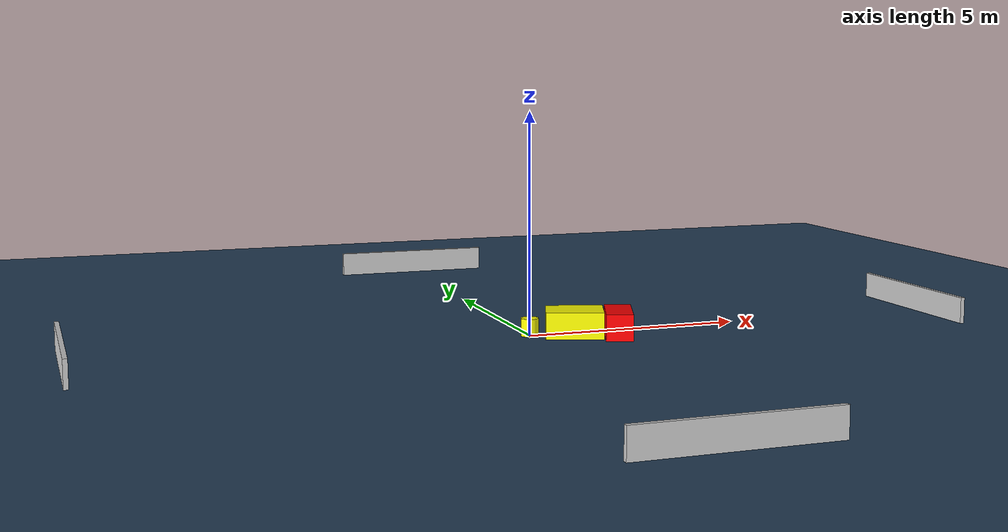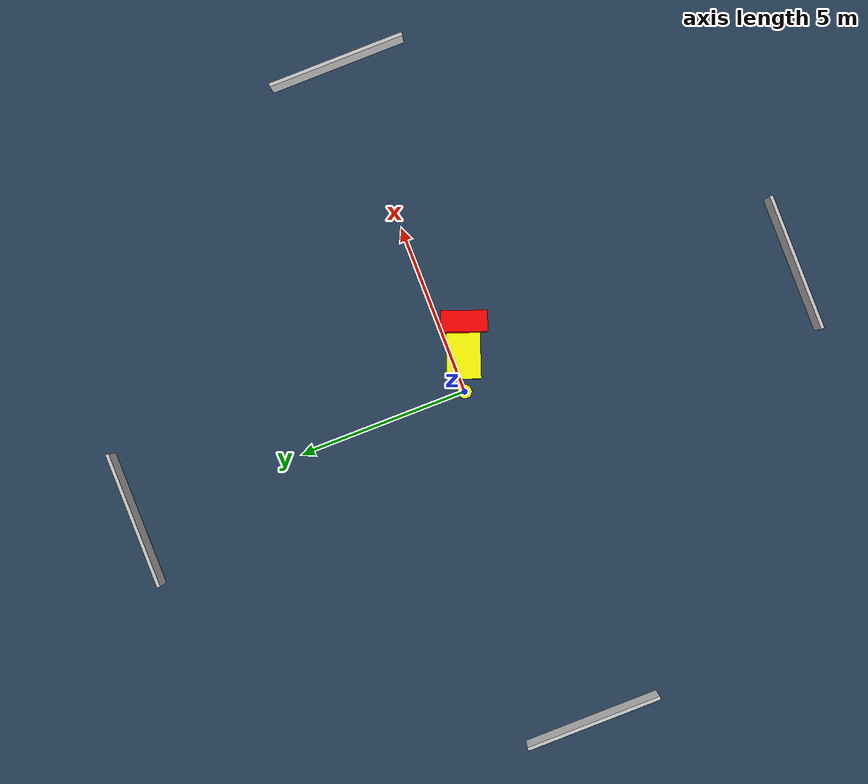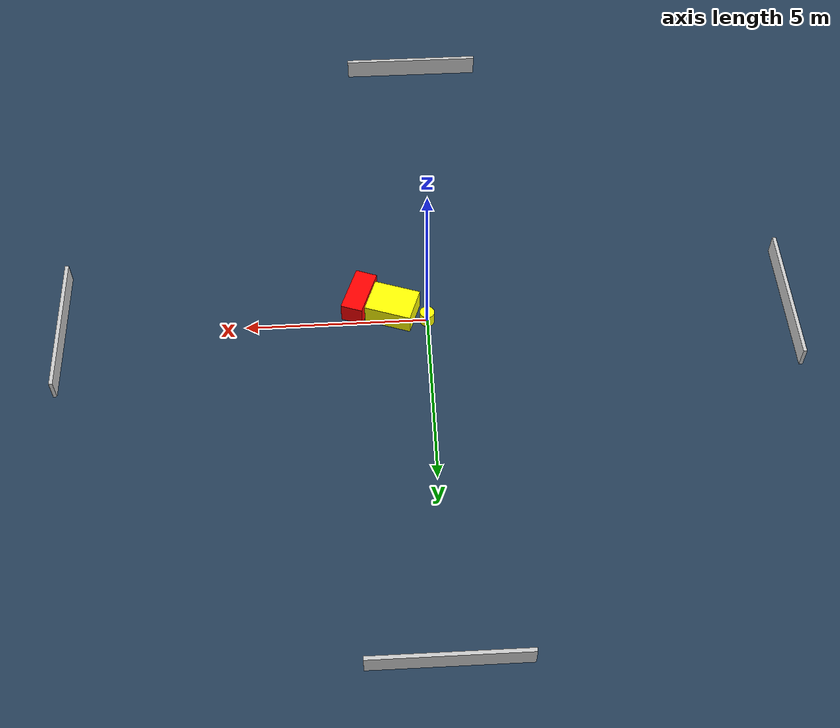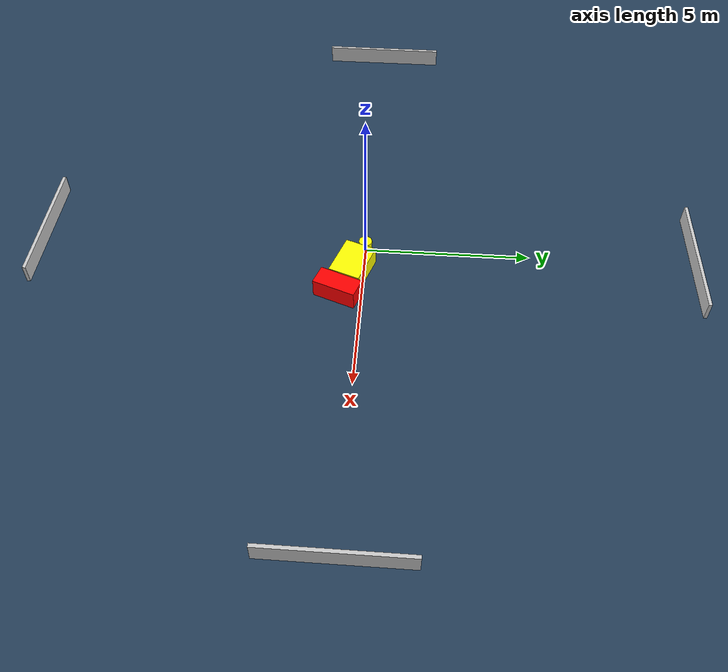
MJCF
<?xml version="1.0" ?>
<mujoco model="generated_environment">
  <option timestep="0.01" integrator="RK4" cone="elliptic"/>
  <default>
    <geom density="1"/>
  </default>
  <asset>
    <texture builtin="gradient" height="3072" name="skybox" rgb1="0.3 0.5 0.7" rgb2="0 0 0" type="skybox" width="512"/>
    <texture builtin="checker" height="300" name="groundplane" rgb1="0.2 0.3 0.4" rgb2="0.1 0.2 0.3" type="2d" width="300"/>
    <material name="groundplane" reflectance="0.2" texrepeat="5 5" texture="groundplane"/>
  </asset>
  <worldbody>
    <light dir="0 0 -1" directional="true" pos="0 0 1.5"/>
    <geom condim="3" friction="0.5 0.005 0.001" material="groundplane" name="floor" pos="0 0 0" size="0 0 0.05" type="plane"/>
    <body name="walls">
      <geom name="wall_1" condim="4" pos="-10.0 0.0 0.3" rgba="0.800000011920929 0.800000011920929 0.800000011920929 1.0" size="0.05 2.0 0.3" type="box"/>
      <geom name="wall_2" condim="4" pos="10.0 0.0 0.3" rgba="0.800000011920929 0.800000011920929 0.800000011920929 1.0" size="0.05 2.0 0.3" type="box"/>
      <geom name="wall_3" condim="4" pos="0.0 -10.0 0.3" rgba="0.800000011920929 0.800000011920929 0.800000011920929 1.0" size="2.0 0.05 0.3" type="box"/>
      <geom name="wall_4" condim="4" pos="0.0 10.0 0.3" rgba="0.800000011920929 0.800000011920929 0.800000011920929 1.0" size="2.0 0.05 0.3" type="box"/>
    </body>
    <body name="robot">
      <joint name="joint_x" type="slide" pos="0 0 0" axis="1 0 0"/>
      <joint name="joint_y" type="slide" pos="0 0 0" axis="0 1 0"/>
      <geom name="robot" type="cylinder" pos="0.0 0.0 0.2" size="0.2 0.2 0.0" mass="5.0" friction="1.0 0.005 0.0001" condim="4" rgba="1.0 1.0 0.0 1.0"/>
    </body>
    <body name="obstacle_1_movable">
      <geom name="obstacle_1_movable" condim="4" pos="0.942794994811455 -0.32619145082730633 0.3" euler="0 0 340.51683803129254" friction="0.0 0.005 0.001" rgba="1.0 1.0 0.0 1.0" size="0.6470138329835257 0.4818199689876775 0.3" type="box" mass="0.1"/>
      <joint type="free"/>
    </body>
    <body name="obstacle_2_static">
      <geom name="obstacle_2_static" condim="4" pos="1.8521902121209812 -0.6976613584226846 0.3" euler="0 0 159.84402672673065" friction="0.0 0.005 0.001" rgba="1.0 0.0 0.0 1.0" size="0.3009603914505583 0.6576374037641461 0.3" type="box"/>
    </body>
  </worldbody>
  <actuator>
    <motor name="actuator_x" joint="joint_x" gear="1" ctrlrange="-1 1"/>
    <motor name="actuator_y" joint="joint_y" gear="1" ctrlrange="-1 1"/>
  </actuator>
</mujoco>
